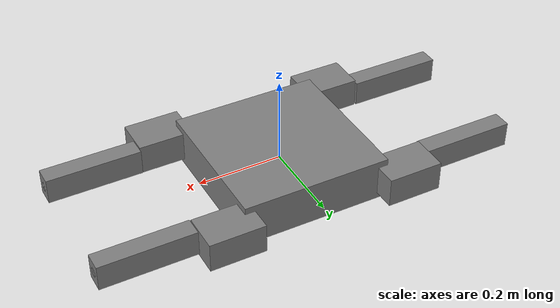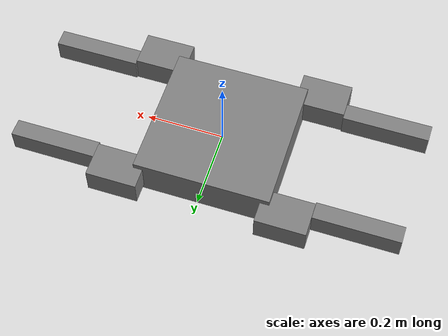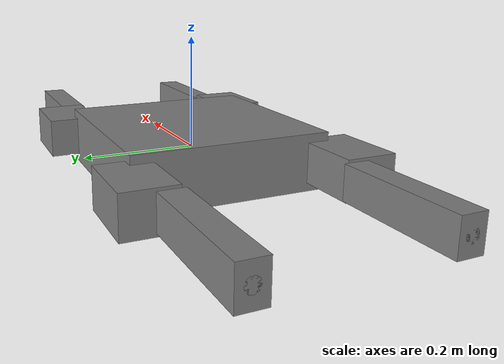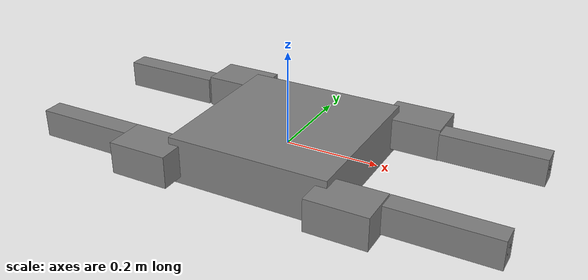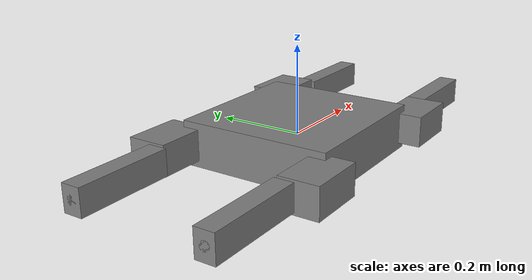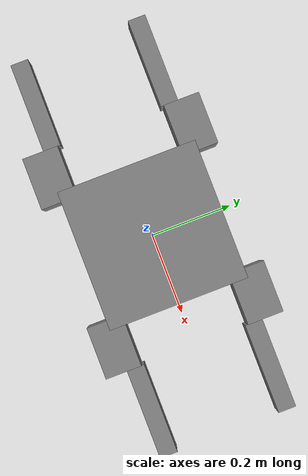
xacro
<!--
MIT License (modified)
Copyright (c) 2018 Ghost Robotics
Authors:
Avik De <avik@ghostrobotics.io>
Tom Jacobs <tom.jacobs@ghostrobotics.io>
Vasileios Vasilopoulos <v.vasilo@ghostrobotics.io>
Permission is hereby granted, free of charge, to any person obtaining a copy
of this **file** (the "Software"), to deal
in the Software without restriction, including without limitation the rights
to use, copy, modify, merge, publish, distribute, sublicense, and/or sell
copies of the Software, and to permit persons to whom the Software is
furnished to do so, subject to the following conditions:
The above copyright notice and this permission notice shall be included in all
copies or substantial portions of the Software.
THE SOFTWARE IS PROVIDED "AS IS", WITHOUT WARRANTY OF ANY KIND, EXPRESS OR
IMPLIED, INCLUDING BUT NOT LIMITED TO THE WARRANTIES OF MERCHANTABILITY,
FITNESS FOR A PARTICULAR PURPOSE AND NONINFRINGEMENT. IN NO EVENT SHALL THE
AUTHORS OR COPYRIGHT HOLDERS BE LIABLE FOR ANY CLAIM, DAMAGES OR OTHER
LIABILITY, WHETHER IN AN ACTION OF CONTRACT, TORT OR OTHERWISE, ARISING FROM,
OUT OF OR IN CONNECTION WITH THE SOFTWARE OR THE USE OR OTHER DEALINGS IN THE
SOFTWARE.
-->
<?xml version="1.0"?>

<robot xmlns:xacro="http://www.ros.org/wiki/xacro" name="ASTRo">

	<!-- Define parameters -->
	<!--WARNING: BODY LENGTH PARAMS ARE NOT YET PROPERLY SET-->
	<xacro:property name="bodyLength" value="0.35"/>
	<xacro:property name="bodyWidth" value="0.35"/>
	<xacro:property name="bodyHeight" value="0.10"/>
	<xacro:property name="bodyMass" value="10.10"/>
	<xacro:property name="hipMass" value="1.18"/>
	<xacro:property name="upperLegMass" value="1.39"/>
	<xacro:property name="lowerLegMass" value="0.28"/>
	<xacro:property name="toeMass" value="0.05"/>
	<xacro:property name="hipLength" value="0.13"/>
	<xacro:property name="hipWidth" value="0.09"/>
	<xacro:property name="hipHeight" value="0.07"/>
	<xacro:property name="upperLegLength" value="0.222"/>
	<xacro:property name="upperLegWidth" value="0.044"/>
	<xacro:property name="upperLegHeight" value="0.060"/>
	<xacro:property name="lowerLegLength" value="0.27"/>
	<xacro:property name="lowerLegRadius" value="0.011"/>
	<xacro:property name="lowerLegAttachLinkLength" value="0.0"/>
	<xacro:property name="podMass" value="0"/>
	<xacro:property name="podLength" value="0"/>
	<xacro:property name="podWidth" value="0.03"/>
	<xacro:property name="podHeight" value="0"/>
	<xacro:property name="dPodAxisToEdge" value="0"/>
	<xacro:property name="dx" value="0.15121"/>
	<xacro:property name="dy" value="0.15121"/>
	<xacro:property name="toeRadius" value="0.017"/>
	<xacro:property name="toeOffset" value="0.0106"/>
	<xacro:property name="toeStiffness" value="30000.0"/>
	<xacro:property name="toeDamping" value="1000.0"/>
	<xacro:property name="toeSpinningFriction" value="0.3"/>
	<xacro:property name="toeFriction" value="20.0"/>
	<xacro:property name="toeLateralFriction" value="10.0"/>
	<xacro:property name="abKinLimit" value="0.43"/>
	<xacro:property name="abSpeedLimit" value="8.6"/>
	<xacro:property name="abEffortLimit" value="375"/>
	<xacro:property name="jointSpeedLimit" value="30"/>
	<xacro:property name="jointEffortLimit" value="87.5"/>

	<material name="gray">
		<color rgba="0.5 0.5 0.5 1.0"/>
	</material>

	<!-- Body -->
	<link name="base">
		<visual>
			<origin rpy="0 0 0" xyz="0 0 0"/>
			<geometry>
				<box size="${bodyLength} ${bodyWidth} ${bodyHeight}"/>
			</geometry>
			<material name="gray"/>
		</visual>

		<inertial>
			<mass value="${bodyMass}"/>
			<!-- Uniform box -->
			<inertia ixx="0.141"  ixy="0"  ixz="0" iyy="0.143" iyz="0" izz="0.254" />
		</inertial>

		<!-- Just copy geometry for collision -->
		<collision>
			<geometry>
				<box size="${bodyLength} ${bodyWidth} ${bodyHeight}"/>
			</geometry>
		</collision>
	</link>
	<gazebo reference="base">
    	<material>Gazebo/BlackTransparent</material>
  	</gazebo>

	<!-- Define our leg macro -->
	<xacro:macro name="leg" params="suffix left front hipJointName kneeJointName abductionJointName abKinLowerLimit abKinUpperLimit">

		<!-- Hip motor -->
		<link name="hip1${suffix}">
			<visual>
				<origin rpy="0 0 0" xyz="${hipLength/2} ${front*left * (hipWidth/2 - podWidth/2)} 0"/>
				<geometry>
					<box size="${hipLength} ${hipWidth} ${hipHeight}"/>
				</geometry>
				<material name="gray"/>
			</visual>

			<collision>
				<origin rpy="0 0 0" xyz="${hipLength/2} ${front*left * (hipWidth/2 - podWidth/2)} 0"/>
				<geometry>
					<box size="${hipLength} ${hipWidth} ${hipHeight}"/>
				</geometry>
			</collision>

			<inertial>
				<mass value="${hipMass}"/>
				<inertia ixx="0.0299"  ixy="0"  ixz="0" iyy="0.0333" iyz="0" izz="0.0046" />
			</inertial>
		</link>
		<gazebo reference="hip1${suffix}">
    		<material>Gazebo/Purple</material>
  		</gazebo>

		<!-- Abduction joint. Joint names are: 8 9 10 11 -->
		<joint name="${abductionJointName}" type="revolute">
			<parent link="base"/>
			<child link="hip1${suffix}"/>
			<axis xyz="0 0 1"/>
			<origin rpy="0 0 ${pi/2 -front*pi/2}" xyz="${front * dx} ${left * dy} 0"/>
			<limit effort="${abEffortLimit}" velocity="${abSpeedLimit}" lower="${abKinLowerLimit}" upper="${abKinUpperLimit}"/>
			<dynamics damping="0.0" friction="0.0"/>
		</joint>

		<!-- Transmission elements required for Gazebo -->
		<transmission name="transmission_${abductionJointName}">
    		<type>transmission_interface/SimpleTransmission</type>
    		<joint name="${abductionJointName}">
      			<hardwareInterface>hardware_interface/EffortJointInterface</hardwareInterface>
    		</joint>
    		<actuator name="motor_${abductionJointName}">
      			<hardwareInterface>EffortJointInterface</hardwareInterface>
      			<mechanicalReduction>1</mechanicalReduction>
    		</actuator>
  		</transmission>

		<!-- Upper leg -->
		<link name="hip2${suffix}">
			<visual>
				<origin rpy="${pi/2} 0 0" xyz="${upperLegLength/2} 0 ${-front*left * (hipWidth/2 - podWidth/2)}"/>
				<geometry>
					<box size="${upperLegLength} ${upperLegWidth} ${upperLegHeight}"/>
				</geometry>
				<material name="gray"/>
			</visual>

			<collision>
				<origin rpy="0 0 0" xyz="${upperLegLength/2} 0 ${-front*left * (hipWidth/2 - podWidth/2)}"/>
				<geometry>
					<box size="${upperLegLength} ${upperLegWidth} ${upperLegHeight}"/>
				</geometry>
			</collision>

			<inertial>
				<mass value="${upperLegMass}"/>
				<inertia ixx="0.0017"  ixy="0" ixz="0" iyy="0.0066" iyz="0" izz="0.0064" />
			</inertial>
		</link>
		<gazebo reference="hip2${suffix}">
    		<material>Gazebo/Blue</material>
  		</gazebo>

		<!-- Hip joint. (Motor to upper leg). Joint names are: 0 2 4 6 -->
		<joint name="${hipJointName}" type="revolute">
			<parent link="hip1${suffix}"/>
			<child link="hip2${suffix}"/>
			<axis xyz="0 0 1"/>
			<origin xyz="${hipLength} ${front*left * (hipWidth/2 - podWidth/2)} 0" rpy="${-pi/2} 0 0"/>
			<limit effort="${jointEffortLimit}" velocity="${jointSpeedLimit}" lower="${-pi/2}" upper="${3*pi/4}"/>
			<dynamics damping="0.0" friction="0.0"/>
		</joint>

		<!-- Transmission elements required for Gazebo -->
		<transmission name="transmission_${hipJointName}">
    		<type>transmission_interface/SimpleTransmission</type>
    		<joint name="${hipJointName}">
      			<hardwareInterface>hardware_interface/EffortJointInterface</hardwareInterface>
    		</joint>
    		<actuator name="motor_${hipJointName}">
      			<hardwareInterface>EffortJointInterface</hardwareInterface>
      			<mechanicalReduction>1</mechanicalReduction>
    		</actuator>
  		</transmission>

		<!-- Lower leg -->
		<link name="knee${suffix}">
			<visual>
				<origin rpy="${pi/2} 0 ${pi/2}" xyz="${lowerLegLength/2} 0 0"/>
				<geometry>
					<cylinder length="${lowerLegLength}" radius="${lowerLegRadius}"/>
				</geometry>
				<material name="gray"/>
			</visual>

			<collision>
				<origin rpy="${pi/2} 0 ${pi/2}" xyz="${lowerLegLength/2} 0 -${lowerLegAttachLinkLength}"/>
				<geometry>
					<cylinder length="${lowerLegLength}" radius="${lowerLegRadius}"/>
				</geometry>
			</collision>

			<inertial>
				<mass value="${lowerLegMass}"/>
				<inertia ixx="0.0665"  ixy="0"  ixz="0" iyy="0.0032" iyz="0" izz="0.0032" />
			</inertial>
		</link>
		<gazebo reference="knee${suffix}">
    		<material>Gazebo/Black</material>
  		</gazebo>

		<!-- Knee joint. Joint names are: 1 3 5 7 -->
		<joint name="${kneeJointName}" type="revolute">
			<parent link="hip2${suffix}"/>
			<child link="knee${suffix}"/>
			<axis xyz="0 0 -1"/>
			<origin xyz="${upperLegLength} 0 ${-front*left * (hipWidth/2 - podWidth/2)}" rpy="0 0 ${pi}"/>
			<limit effort="${jointEffortLimit}" velocity="${jointSpeedLimit}" lower="0" upper="${pi}"/>
			<dynamics damping="0.0" friction="0.0"/>
		</joint>

		<!-- Transmission elements required for Gazebo -->
		<transmission name="transmission_${kneeJointName}">
    		<type>transmission_interface/SimpleTransmission</type>
    		<joint name="${kneeJointName}">
      			<hardwareInterface>hardware_interface/EffortJointInterface</hardwareInterface>
    		</joint>
    		<actuator name="motor_${kneeJointName}">
      			<hardwareInterface>EffortJointInterface</hardwareInterface>
      			<mechanicalReduction>1</mechanicalReduction>
    		</actuator>
  		</transmission>

		Toe
		<link name="foot${suffix}">
		</link>
		<gazebo reference="foot${suffix}">
    		<material>Gazebo/DarkGray</material>
			<collision>
				<surface>
					<bounce>
						<restitution_coefficient>0</restitution_coefficient>
						<threshold>1e+06</threshold>
					</bounce>
					<friction>
						<torsional>
							<coefficient>${toeSpinningFriction}</coefficient>
						</torsional>
						<ode>
							<mu>${toeFriction}</mu>
							<mu2>${toeLateralFriction}</mu2>
						</ode>
						<bullet>
							<rolling_friction>${toeSpinningFriction}</rolling_friction>
							<friction2>${toeLateralFriction}</friction2>
						</bullet>
					</friction>
					<contact>
						<bullet>
							<kp>${toeStiffness}</kp>
							<kd>${toeDamping}</kd>
						</bullet>
						<ode>
							<kp>${toeStiffness}</kp>
							<kd>${toeDamping}</kd>
						</ode>
					</contact>
				</surface>
			</collision>
  		</gazebo>

		<joint name="jtoe${suffix}" type="fixed">
			<parent link="knee${suffix}"/>
			<child link="foot${suffix}"/>
			<origin xyz="${lowerLegLength} 0 0"/>
			<dynamics damping="0.0" friction="0.0"/>
		</joint>
	</xacro:macro>

	<!-- red new legs -->
	<!-- TODO: clean this, it should be part of main leg macro -->

		<!-- Define our leg macro -->
	<xacro:macro name="red_leg" params="suffix left front hipJointName kneeJointName abductionJointName abKinLowerLimit abKinUpperLimit">

		<!-- Hip motor -->
		<link name="hip${suffix}">
			<visual>
				<origin rpy="${pi/2} 0 0" xyz="0.0 ${left * (dPodAxisToEdge - podWidth/2) + left*0.15*0.0} 0"/>
				<geometry>
					<box size="${podLength} ${podHeight} ${podWidth}"/>
				</geometry>
			</visual>

			<collision>
				<origin rpy="${pi/2} 0 0" xyz="0.0 ${left * (dPodAxisToEdge - podWidth/2)} 0"/>
				<geometry>
					<box size="${podLength} ${podHeight} ${podWidth}"/>
				</geometry>
			</collision>

			<inertial>
				<mass value="${podMass}"/>
				<inertia ixx="0.00891458"  ixy="0"  ixz="0" iyy="0.0100573" iyz="0" izz="0.01533698" />
			</inertial>
		</link>
		<gazebo reference="hip${suffix}">
    		<material>Gazebo/Red</material>
  		</gazebo>

		<!-- Abduction joint. Joint names are: 8 9 10 11 -->
		<joint name="${abductionJointName}" type="revolute">
			<parent link="body"/>
			<child link="hip${suffix}"/>
			<axis xyz="1 0 0"/>
			<origin xyz="${front * dx} ${left * dy} 0"/>
			<limit effort="${abEffortLimit}" velocity="${abSpeedLimit}" lower="${-abKinLimit}" upper="${abKinLimit}"/>
			<dynamics damping="0.0" friction="0.0"/>
		</joint>

		<!-- Transmission elements required for Gazebo -->
		<transmission name="transmission_${abductionJointName}">
    		<type>transmission_interface/SimpleTransmission</type>
    		<joint name="${abductionJointName}">
      			<hardwareInterface>hardware_interface/EffortJointInterface</hardwareInterface>
    		</joint>
    		<actuator name="motor_${abductionJointName}">
      			<hardwareInterface>EffortJointInterface</hardwareInterface>
      			<mechanicalReduction>1</mechanicalReduction>
    		</actuator>
  		</transmission>

		<!-- Upper leg -->
		<link name="upper${suffix}">
			<visual>
				<origin rpy="0 0 0" xyz="-${upperLegLength/2} ${left*0.2*0.0} 0"/>
				<geometry>
					<box size="${upperLegLength} ${upperLegWidth} ${upperLegHeight}"/>
				</geometry>
			</visual>

			<collision>
				<origin rpy="0 0 0" xyz="-${upperLegLength/2} 0 0"/>
				<geometry>
					<box size="${upperLegLength} ${upperLegWidth} ${upperLegHeight}"/>
				</geometry>
			</collision>

			<inertial>
				<mass value="${upperLegMass}"/>
				<inertia ixx="0.0003125"  ixy="0" ixz="0" iyy="0.0040625" iyz="0" izz="0.0040625" />
			</inertial>
		</link>
		<gazebo reference="upper${suffix}">
    		<material>Gazebo/Blue</material>
  		</gazebo>

		<!-- Hip joint. (Motor to upper leg). Joint names are: 0 2 4 6 -->
		<joint name="${hipJointName}" type="revolute">
			<parent link="hip${suffix}"/>
			<child link="upper${suffix}"/>
			<axis xyz="0 -1 0"/>
			<origin xyz="0 ${left * (dPodAxisToEdge + upperLegWidth/2)} 0"/> <!--  rpy="0 -0.3 0" -->
			<limit effort="${jointEffortLimit}" velocity="${jointSpeedLimit}" lower="${-pi}" upper="${pi}"/>
			<dynamics damping="0.0" friction="0.0"/>
		</joint>

		<!-- Transmission elements required for Gazebo -->
		<transmission name="transmission_${hipJointName}">
    		<type>transmission_interface/SimpleTransmission</type>
    		<joint name="${hipJointName}">
      			<hardwareInterface>hardware_interface/EffortJointInterface</hardwareInterface>
    		</joint>
    		<actuator name="motor_${hipJointName}">
      			<hardwareInterface>EffortJointInterface</hardwareInterface>
      			<mechanicalReduction>1</mechanicalReduction>
    		</actuator>
  		</transmission>

		<!-- Lower leg -->
		<link name="lower${suffix}">
			<visual>
				<origin rpy="0 ${pi/2} 0" xyz="${lowerLegLength/2} 0 -${lowerLegAttachLinkLength}"/>
				<geometry>
					<cylinder length="${lowerLegLength}" radius="${lowerLegRadius}"/>
				</geometry>
			</visual>

			<collision>
				<origin rpy="0 ${pi/2} 0" xyz="${lowerLegLength/2} 0 -${lowerLegAttachLinkLength}"/>
				<geometry>
					<cylinder length="${lowerLegLength}" radius="${lowerLegRadius}"/>
				</geometry>
			</collision>

			<inertial>
				<mass value="${lowerLegMass}"/>
				<inertia ixx="0.00131075"  ixy="0"  ixz="0" iyy="0.00131075" iyz="0" izz="0.0001" />
			</inertial>
		</link>
		<gazebo reference="lower${suffix}">
    		<material>Gazebo/Black</material>
  		</gazebo>

		<!-- Knee joint. Joint names are: 1 3 5 7 -->
		<joint name="${kneeJointName}" type="revolute">
			<parent link="upper${suffix}"/>
			<child link="lower${suffix}"/>
			<axis xyz="0 1 0"/>
			<origin xyz="-${upperLegLength} 0 0"/> <!--rpy="0 0.5 0"-->
			<limit effort="${jointEffortLimit}" velocity="${jointSpeedLimit}" lower="0" upper="${pi}"/>
			<dynamics damping="0.0" friction="0.0"/>
		</joint>

		<!-- Transmission elements required for Gazebo -->
		<transmission name="transmission_${kneeJointName}">
    		<type>transmission_interface/SimpleTransmission</type>
    		<joint name="${kneeJointName}">
      			<hardwareInterface>hardware_interface/EffortJointInterface</hardwareInterface>
    		</joint>
    		<actuator name="motor_${kneeJointName}">
      			<hardwareInterface>EffortJointInterface</hardwareInterface>
      			<mechanicalReduction>1</mechanicalReduction>
    		</actuator>
  		</transmission>

	</xacro:macro>

	<!-- Our four legs -->
 	<xacro:leg suffix=",fl" hipJointName="0" kneeJointName="1" abductionJointName="8" front="1" left="1" abKinLowerLimit="${-pi/8}" abKinUpperLimit="${pi/2}"/>
 	<xacro:leg suffix=",rl" hipJointName="2" kneeJointName="3" abductionJointName="9" front="-1" left="1" abKinLowerLimit="${-pi/2}" abKinUpperLimit="${pi/8}"/>
 	<xacro:leg suffix=",fr" hipJointName="4" kneeJointName="5" abductionJointName="10" front="1" left="-1" abKinLowerLimit="${-pi/2}" abKinUpperLimit="${pi/8}"/>
 	<xacro:leg suffix=",rr" hipJointName="6" kneeJointName="7" abductionJointName="11" front="-1" left="-1" abKinLowerLimit="${-pi/8}" abKinUpperLimit="${pi/2}"/>

	 <!-- Add ros_control plugin -->
	<gazebo>
  		<plugin name="gazebo_ros_control" filename="libgazebo_ros_control.so">
    		<robotNamespace>/ASTRo</robotNamespace>
  		</plugin>
	</gazebo>
</robot>
